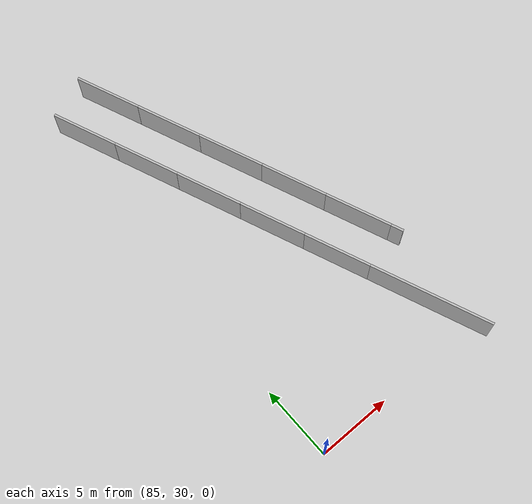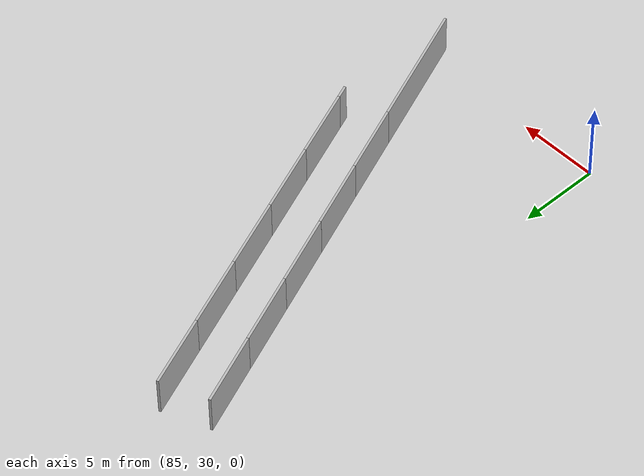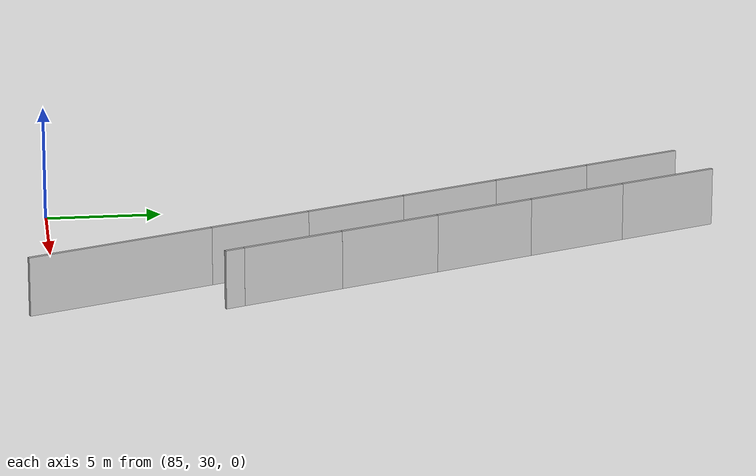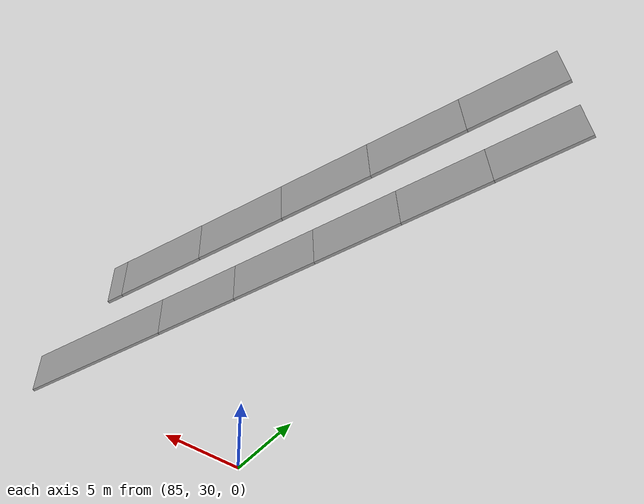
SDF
<?xml version="1.0" ?>
<sdf version="1.6">
  <model name="sps_2410">
    <pose frame="">0 0 0 0 -0 0</pose>
    <static>1</static>
    <self_collide>0</self_collide>
    <allow_auto_disable>0</allow_auto_disable>
    <link name="Wall591">
      <kinematic>0</kinematic>
      <gravity>1</gravity>
      <self_collide>0</self_collide>
      <collision name="collision">
        <geometry>
          <box>
            <size>0.844674 0.15 2.5</size>
          </box>
        </geometry>
        <pose frame="">0 0 0 0 -0 0</pose>
      </collision>
      <visual name="visual">
        <geometry>
          <box>
            <size>0.844674 0.15 2.5</size>
          </box>
        </geometry>
        <pose frame="">0 0 0 0 -0 0</pose>
        <cast_shadows>1</cast_shadows>
        <transparency>0.0</transparency>
      </visual>
      <pose frame="">97.5133 37.267 1.25 0 0 -1.18636</pose>
    </link>
    <link name="Wall670">
      <kinematic>0</kinematic>
      <gravity>1</gravity>
      <self_collide>0</self_collide>
      <collision name="collision">
        <geometry>
          <box>
            <size>8.26061 0.15 2.5</size>
          </box>
        </geometry>
        <pose frame="">0 0 0 0 -0 0</pose>
      </collision>
      <visual name="visual">
        <geometry>
          <box>
            <size>8.26061 0.15 2.5</size>
          </box>
        </geometry>
        <pose frame="">0 0 0 0 -0 0</pose>
        <cast_shadows>1</cast_shadows>
        <transparency>0.0</transparency>
      </visual>
      <pose frame="">96.1228 32.7052 1.25 0 0 -1.18639</pose>
    </link>
    <link name="Wall4744">
      <kinematic>0</kinematic>
      <gravity>1</gravity>
      <self_collide>0</self_collide>
      <collision name="collision">
        <geometry>
          <box>
            <size>4.52446 0.15 2.5</size>
          </box>
        </geometry>
        <pose frame="">0 0 0 0 -0 0</pose>
      </collision>
      <visual name="visual">
        <geometry>
          <box>
            <size>4.52446 0.15 2.5</size>
          </box>
        </geometry>
        <pose frame="">0 0 0 0 -0 0</pose>
        <cast_shadows>1</cast_shadows>
        <transparency>0.0</transparency>
      </visual>
      <pose frame="">86.9397 55.4129 1.25 0 0 -1.18646</pose>
    </link>
    <link name="Wall4745">
      <kinematic>0</kinematic>
      <gravity>1</gravity>
      <self_collide>0</self_collide>
      <collision name="collision">
        <geometry>
          <box>
            <size>4.5268 0.15 2.5</size>
          </box>
        </geometry>
        <pose frame="">0 0 0 0 -0 0</pose>
      </collision>
      <visual name="visual">
        <geometry>
          <box>
            <size>4.5268 0.15 2.5</size>
          </box>
        </geometry>
        <pose frame="">0 0 0 0 -0 0</pose>
        <cast_shadows>1</cast_shadows>
        <transparency>0.0</transparency>
      </visual>
      <pose frame="">88.6365 51.2174 1.25 0 0 -1.18648</pose>
    </link>
    <link name="Wall4746">
      <kinematic>0</kinematic>
      <gravity>1</gravity>
      <self_collide>0</self_collide>
      <collision name="collision">
        <geometry>
          <box>
            <size>4.52454 0.15 2.5</size>
          </box>
        </geometry>
        <pose frame="">0 0 0 0 -0 0</pose>
      </collision>
      <visual name="visual">
        <geometry>
          <box>
            <size>4.52454 0.15 2.5</size>
          </box>
        </geometry>
        <pose frame="">0 0 0 0 -0 0</pose>
        <cast_shadows>1</cast_shadows>
        <transparency>0.0</transparency>
      </visual>
      <pose frame="">90.3332 47.0218 1.25 0 0 -1.18653</pose>
    </link>
    <link name="Wall4747">
      <kinematic>0</kinematic>
      <gravity>1</gravity>
      <self_collide>0</self_collide>
      <collision name="collision">
        <geometry>
          <box>
            <size>4.5256 0.15 2.5</size>
          </box>
        </geometry>
        <pose frame="">0 0 0 0 -0 0</pose>
      </collision>
      <visual name="visual">
        <geometry>
          <box>
            <size>4.5256 0.15 2.5</size>
          </box>
        </geometry>
        <pose frame="">0 0 0 0 -0 0</pose>
        <cast_shadows>1</cast_shadows>
        <transparency>0.0</transparency>
      </visual>
      <pose frame="">92.0294 42.8267 1.25 0 0 -1.18656</pose>
    </link>
    <link name="Wall4748">
      <kinematic>0</kinematic>
      <gravity>1</gravity>
      <self_collide>0</self_collide>
      <collision name="collision">
        <geometry>
          <box>
            <size>4.52479 0.15 2.5</size>
          </box>
        </geometry>
        <pose frame="">0 0 0 0 -0 0</pose>
      </collision>
      <visual name="visual">
        <geometry>
          <box>
            <size>4.52479 0.15 2.5</size>
          </box>
        </geometry>
        <pose frame="">0 0 0 0 -0 0</pose>
        <cast_shadows>1</cast_shadows>
        <transparency>0.0</transparency>
      </visual>
      <pose frame="">93.7258 38.6315 1.25 0 0 -1.18654</pose>
    </link>
    <link name="Wall6481">
      <kinematic>0</kinematic>
      <gravity>1</gravity>
      <self_collide>0</self_collide>
      <collision name="collision">
        <geometry>
          <box>
            <size>4.52454 0.15 2.5</size>
          </box>
        </geometry>
        <pose frame="">0 0 0 0 -0 0</pose>
      </collision>
      <visual name="visual">
        <geometry>
          <box>
            <size>4.52454 0.15 2.5</size>
          </box>
        </geometry>
        <pose frame="">0 0 0 0 -0 0</pose>
        <cast_shadows>1</cast_shadows>
        <transparency>0.0</transparency>
      </visual>
      <pose frame="">89.721 56.5376 1.25 0 0 -1.18653</pose>
    </link>
    <link name="Wall6482">
      <kinematic>0</kinematic>
      <gravity>1</gravity>
      <self_collide>0</self_collide>
      <collision name="collision">
        <geometry>
          <box>
            <size>4.52646 0.15 2.5</size>
          </box>
        </geometry>
        <pose frame="">0 0 0 0 -0 0</pose>
      </collision>
      <visual name="visual">
        <geometry>
          <box>
            <size>4.52646 0.15 2.5</size>
          </box>
        </geometry>
        <pose frame="">0 0 0 0 -0 0</pose>
        <cast_shadows>1</cast_shadows>
        <transparency>0.0</transparency>
      </visual>
      <pose frame="">91.4177 52.3422 1.25 0 0 -1.18645</pose>
    </link>
    <link name="Wall6483">
      <kinematic>0</kinematic>
      <gravity>1</gravity>
      <self_collide>0</self_collide>
      <collision name="collision">
        <geometry>
          <box>
            <size>4.52479 0.15 2.5</size>
          </box>
        </geometry>
        <pose frame="">0 0 0 0 -0 0</pose>
      </collision>
      <visual name="visual">
        <geometry>
          <box>
            <size>4.52479 0.15 2.5</size>
          </box>
        </geometry>
        <pose frame="">0 0 0 0 -0 0</pose>
        <cast_shadows>1</cast_shadows>
        <transparency>0.0</transparency>
      </visual>
      <pose frame="">93.1144 48.1467 1.25 0 0 -1.18654</pose>
    </link>
    <link name="Wall6484">
      <kinematic>0</kinematic>
      <gravity>1</gravity>
      <self_collide>0</self_collide>
      <collision name="collision">
        <geometry>
          <box>
            <size>4.52591 0.15 2.5</size>
          </box>
        </geometry>
        <pose frame="">0 0 0 0 -0 0</pose>
      </collision>
      <visual name="visual">
        <geometry>
          <box>
            <size>4.52591 0.15 2.5</size>
          </box>
        </geometry>
        <pose frame="">0 0 0 0 -0 0</pose>
        <cast_shadows>1</cast_shadows>
        <transparency>0.0</transparency>
      </visual>
      <pose frame="">94.8107 43.9513 1.25 0 0 -1.18661</pose>
    </link>
    <link name="Wall6485">
      <kinematic>0</kinematic>
      <gravity>1</gravity>
      <self_collide>0</self_collide>
      <collision name="collision">
        <geometry>
          <box>
            <size>4.52467 0.15 2.5</size>
          </box>
        </geometry>
        <pose frame="">0 0 0 0 -0 0</pose>
      </collision>
      <visual name="visual">
        <geometry>
          <box>
            <size>4.52467 0.15 2.5</size>
          </box>
        </geometry>
        <pose frame="">0 0 0 0 -0 0</pose>
        <cast_shadows>1</cast_shadows>
        <transparency>0.0</transparency>
      </visual>
      <pose frame="">96.5069 39.7559 1.25 0 0 -1.18657</pose>
    </link>
  </model>
</sdf>
